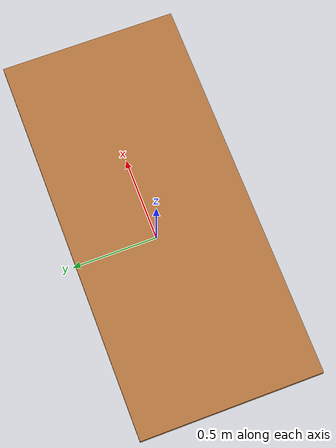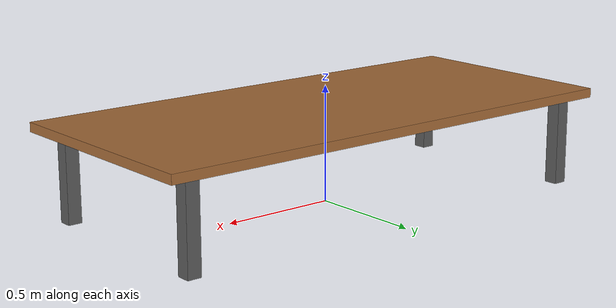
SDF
<?xml version="1.0"?>
<sdf version="1.6">
  <model name="low_laundry_table">
    <static>true</static>
    <link name="link">

      <!-- Table top: 2.20 m x 1.00 m, top surface height = 0.42 m -->
      <collision name="top_collision">
        <pose>0 0 0.40 0 0 0</pose>
        <geometry>
          <box><size>2.20 1.00 0.04</size></box>
        </geometry>
      </collision>
      <visual name="top_visual">
        <pose>0 0 0.40 0 0 0</pose>
        <geometry>
          <box><size>2.20 1.00 0.04</size></box>
        </geometry>
        <material>
          <ambient>0.55 0.35 0.18 1</ambient>
          <diffuse>0.65 0.42 0.22 1</diffuse>
        </material>
      </visual>

      <collision name="leg1_collision">
        <pose>0.98 0.42 0.19 0 0 0</pose>
        <geometry><box><size>0.06 0.06 0.38</size></box></geometry>
      </collision>
      <visual name="leg1_visual">
        <pose>0.98 0.42 0.19 0 0 0</pose>
        <geometry><box><size>0.06 0.06 0.38</size></box></geometry>
        <material><ambient>0.25 0.25 0.25 1</ambient><diffuse>0.35 0.35 0.35 1</diffuse></material>
      </visual>

      <collision name="leg2_collision">
        <pose>-0.98 0.42 0.19 0 0 0</pose>
        <geometry><box><size>0.06 0.06 0.38</size></box></geometry>
      </collision>
      <visual name="leg2_visual">
        <pose>-0.98 0.42 0.19 0 0 0</pose>
        <geometry><box><size>0.06 0.06 0.38</size></box></geometry>
        <material><ambient>0.25 0.25 0.25 1</ambient><diffuse>0.35 0.35 0.35 1</diffuse></material>
      </visual>

      <collision name="leg3_collision">
        <pose>0.98 -0.42 0.19 0 0 0</pose>
        <geometry><box><size>0.06 0.06 0.38</size></box></geometry>
      </collision>
      <visual name="leg3_visual">
        <pose>0.98 -0.42 0.19 0 0 0</pose>
        <geometry><box><size>0.06 0.06 0.38</size></box></geometry>
        <material><ambient>0.25 0.25 0.25 1</ambient><diffuse>0.35 0.35 0.35 1</diffuse></material>
      </visual>

      <collision name="leg4_collision">
        <pose>-0.98 -0.42 0.19 0 0 0</pose>
        <geometry><box><size>0.06 0.06 0.38</size></box></geometry>
      </collision>
      <visual name="leg4_visual">
        <pose>-0.98 -0.42 0.19 0 0 0</pose>
        <geometry><box><size>0.06 0.06 0.38</size></box></geometry>
        <material><ambient>0.25 0.25 0.25 1</ambient><diffuse>0.35 0.35 0.35 1</diffuse></material>
      </visual>

    </link>
  </model>
</sdf>
